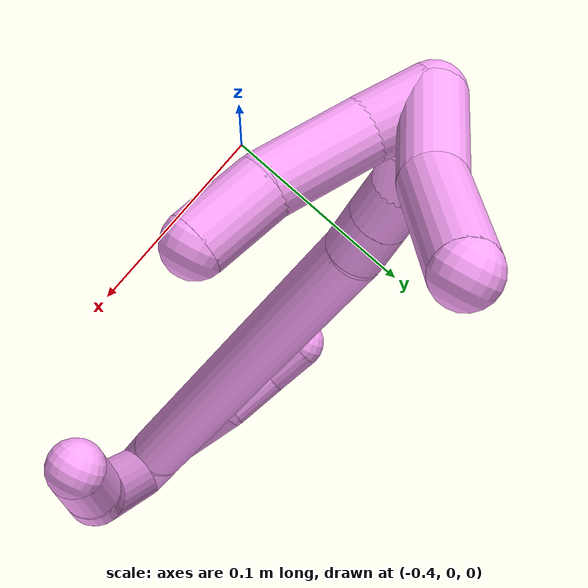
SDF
<sdf version="1.7">
 <world name="default">
  <model name="4">
   <static>0</static>
   <link name="4">
    <collision name="collision-cylinder-e_1_2_8">
     <pose>0.047343 -0.016657 0.004131 1.32771 1.22304 1.00344</pose>
     <geometry><cylinder><radius>0.0125</radius><length>0.100716</length></cylinder></geometry>
     <surface>
      <friction><ode><mu>1.16</mu><mu2>1.16</mu2><slip1>0</slip1><slip2>0</slip2></ode></friction>
      <contact><ode><kp>1e+06</kp><kd>1</kd><max_vel>0</max_vel><min_depth>0.001</min_depth></ode></contact>
     </surface>
    </collision>
    <visual name="visual-cylinder-e_1_2_8">
     <pose>0.047343 -0.016657 0.004131 1.32771 1.22304 1.00344</pose>
     <geometry><cylinder><radius>0.0125</radius><length>0.100716</length></cylinder></geometry>
     <material><ambient>1 0.65098 0.996078 1</ambient></material>
    </visual>
    <collision name="collision-cylinder-e_2_8_9">
     <pose>0.104913 -0.037019 0.012367 0.734259 1.07507 0.450679</pose>
     <geometry><cylinder><radius>0.0125</radius><length>0.023252</length></cylinder></geometry>
     <surface>
      <friction><ode><mu>1.16</mu><mu2>1.16</mu2><slip1>0</slip1><slip2>0</slip2></ode></friction>
      <contact><ode><kp>1e+06</kp><kd>1</kd><max_vel>0</max_vel><min_depth>0.001</min_depth></ode></contact>
     </surface>
    </collision>
    <visual name="visual-cylinder-e_2_8_9">
     <pose>0.104913 -0.037019 0.012367 0.734259 1.07507 0.450679</pose>
     <geometry><cylinder><radius>0.0125</radius><length>0.023252</length></cylinder></geometry>
     <material><ambient>1 0.65098 0.996078 1</ambient></material>
    </visual>
    <collision name="collision-cylinder-e_3_9_6">
     <pose>0.124984 -0.047352 0.021818 0.891994 0.857642 0.430424</pose>
     <geometry><cylinder><radius>0.0125</radius><length>0.026032</length></cylinder></geometry>
     <surface>
      <friction><ode><mu>1.16</mu><mu2>1.16</mu2><slip1>0</slip1><slip2>0</slip2></ode></friction>
      <contact><ode><kp>1e+06</kp><kd>1</kd><max_vel>0</max_vel><min_depth>0.001</min_depth></ode></contact>
     </surface>
    </collision>
    <visual name="visual-cylinder-e_3_9_6">
     <pose>0.124984 -0.047352 0.021818 0.891994 0.857642 0.430424</pose>
     <geometry><cylinder><radius>0.0125</radius><length>0.026032</length></cylinder></geometry>
     <material><ambient>1 0.65098 0.996078 1</ambient></material>
    </visual>
    <collision name="collision-cylinder-e_1_2_10">
     <pose>0.00143 0.00238 0.010351 -0.226018 0.133839 -0.015212</pose>
     <geometry><cylinder><radius>0.0125</radius><length>0.021434</length></cylinder></geometry>
     <surface>
      <friction><ode><mu>1.16</mu><mu2>1.16</mu2><slip1>0</slip1><slip2>0</slip2></ode></friction>
      <contact><ode><kp>1e+06</kp><kd>1</kd><max_vel>0</max_vel><min_depth>0.001</min_depth></ode></contact>
     </surface>
    </collision>
    <visual name="visual-cylinder-e_1_2_10">
     <pose>0.00143 0.00238 0.010351 -0.226018 0.133839 -0.015212</pose>
     <geometry><cylinder><radius>0.0125</radius><length>0.021434</length></cylinder></geometry>
     <material><ambient>1 0.65098 0.996078 1</ambient></material>
    </visual>
    <collision name="collision-cylinder-e_2_10_11">
     <pose>0.006246 0.011552 0.035509 -0.430064 0.204936 -0.04491</pose>
     <geometry><cylinder><radius>0.0125</radius><length>0.033277</length></cylinder></geometry>
     <surface>
      <friction><ode><mu>1.16</mu><mu2>1.16</mu2><slip1>0</slip1><slip2>0</slip2></ode></friction>
      <contact><ode><kp>1e+06</kp><kd>1</kd><max_vel>0</max_vel><min_depth>0.001</min_depth></ode></contact>
     </surface>
    </collision>
    <visual name="visual-cylinder-e_2_10_11">
     <pose>0.006246 0.011552 0.035509 -0.430064 0.204936 -0.04491</pose>
     <geometry><cylinder><radius>0.0125</radius><length>0.033277</length></cylinder></geometry>
     <material><ambient>1 0.65098 0.996078 1</ambient></material>
    </visual>
    <collision name="collision-cylinder-e_3_11_12">
     <pose>0.007967 0.023375 0.061387 -0.426477 -0.136121 0.029518</pose>
     <geometry><cylinder><radius>0.0125</radius><length>0.024548</length></cylinder></geometry>
     <surface>
      <friction><ode><mu>1.16</mu><mu2>1.16</mu2><slip1>0</slip1><slip2>0</slip2></ode></friction>
      <contact><ode><kp>1e+06</kp><kd>1</kd><max_vel>0</max_vel><min_depth>0.001</min_depth></ode></contact>
     </surface>
    </collision>
    <visual name="visual-cylinder-e_3_11_12">
     <pose>0.007967 0.023375 0.061387 -0.426477 -0.136121 0.029518</pose>
     <geometry><cylinder><radius>0.0125</radius><length>0.024548</length></cylinder></geometry>
     <material><ambient>1 0.65098 0.996078 1</ambient></material>
    </visual>
    <collision name="collision-cylinder-e_4_12_5">
     <pose>0.007634 0.031954 0.082111 -0.352315 0.128859 -0.022968</pose>
     <geometry><cylinder><radius>0.0125</radius><length>0.020741</length></cylinder></geometry>
     <surface>
      <friction><ode><mu>1.16</mu><mu2>1.16</mu2><slip1>0</slip1><slip2>0</slip2></ode></friction>
      <contact><ode><kp>1e+06</kp><kd>1</kd><max_vel>0</max_vel><min_depth>0.001</min_depth></ode></contact>
     </surface>
    </collision>
    <visual name="visual-cylinder-e_4_12_5">
     <pose>0.007634 0.031954 0.082111 -0.352315 0.128859 -0.022968</pose>
     <geometry><cylinder><radius>0.0125</radius><length>0.020741</length></cylinder></geometry>
     <material><ambient>1 0.65098 0.996078 1</ambient></material>
    </visual>
    <collision name="collision-cylinder-e_1_2_13">
     <pose>0.013659 -0.001333 0.010435 0.127058 0.914513 0.062581</pose>
     <geometry><cylinder><radius>0.0125</radius><length>0.03448</length></cylinder></geometry>
     <surface>
      <friction><ode><mu>1.16</mu><mu2>1.16</mu2><slip1>0</slip1><slip2>0</slip2></ode></friction>
      <contact><ode><kp>1e+06</kp><kd>1</kd><max_vel>0</max_vel><min_depth>0.001</min_depth></ode></contact>
     </surface>
    </collision>
    <visual name="visual-cylinder-e_1_2_13">
     <pose>0.013659 -0.001333 0.010435 0.127058 0.914513 0.062581</pose>
     <geometry><cylinder><radius>0.0125</radius><length>0.03448</length></cylinder></geometry>
     <material><ambient>1 0.65098 0.996078 1</ambient></material>
    </visual>
    <collision name="collision-cylinder-e_2_13_14">
     <pose>0.090405 -0.002249 0.088093 -0.006199 0.753664 -0.002453</pose>
     <geometry><cylinder><radius>0.0125</radius><length>0.184384</length></cylinder></geometry>
     <surface>
      <friction><ode><mu>1.16</mu><mu2>1.16</mu2><slip1>0</slip1><slip2>0</slip2></ode></friction>
      <contact><ode><kp>1e+06</kp><kd>1</kd><max_vel>0</max_vel><min_depth>0.001</min_depth></ode></contact>
     </surface>
    </collision>
    <visual name="visual-cylinder-e_2_13_14">
     <pose>0.090405 -0.002249 0.088093 -0.006199 0.753664 -0.002453</pose>
     <geometry><cylinder><radius>0.0125</radius><length>0.184384</length></cylinder></geometry>
     <material><ambient>1 0.65098 0.996078 1</ambient></material>
    </visual>
    <collision name="collision-cylinder-e_3_14_15">
     <pose>0.159379 -0.002376 0.163553 0.065858 0.619412 0.021081</pose>
     <geometry><cylinder><radius>0.0125</radius><length>0.020274</length></cylinder></geometry>
     <surface>
      <friction><ode><mu>1.16</mu><mu2>1.16</mu2><slip1>0</slip1><slip2>0</slip2></ode></friction>
      <contact><ode><kp>1e+06</kp><kd>1</kd><max_vel>0</max_vel><min_depth>0.001</min_depth></ode></contact>
     </surface>
    </collision>
    <visual name="visual-cylinder-e_3_14_15">
     <pose>0.159379 -0.002376 0.163553 0.065858 0.619412 0.021081</pose>
     <geometry><cylinder><radius>0.0125</radius><length>0.020274</length></cylinder></geometry>
     <material><ambient>1 0.65098 0.996078 1</ambient></material>
    </visual>
    <collision name="collision-cylinder-e_4_15_16">
     <pose>0.171453 -0.00347 0.179722 0.069301 0.661342 0.023798</pose>
     <geometry><cylinder><radius>0.0125</radius><length>0.020154</length></cylinder></geometry>
     <surface>
      <friction><ode><mu>1.16</mu><mu2>1.16</mu2><slip1>0</slip1><slip2>0</slip2></ode></friction>
      <contact><ode><kp>1e+06</kp><kd>1</kd><max_vel>0</max_vel><min_depth>0.001</min_depth></ode></contact>
     </surface>
    </collision>
    <visual name="visual-cylinder-e_4_15_16">
     <pose>0.171453 -0.00347 0.179722 0.069301 0.661342 0.023798</pose>
     <geometry><cylinder><radius>0.0125</radius><length>0.020154</length></cylinder></geometry>
     <material><ambient>1 0.65098 0.996078 1</ambient></material>
    </visual>
    <collision name="collision-cylinder-e_5_16_17">
     <pose>0.183376 -0.00787 0.195057 0.479647 0.602076 0.15155</pose>
     <geometry><cylinder><radius>0.0125</radius><length>0.020247</length></cylinder></geometry>
     <surface>
      <friction><ode><mu>1.16</mu><mu2>1.16</mu2><slip1>0</slip1><slip2>0</slip2></ode></friction>
      <contact><ode><kp>1e+06</kp><kd>1</kd><max_vel>0</max_vel><min_depth>0.001</min_depth></ode></contact>
     </surface>
    </collision>
    <visual name="visual-cylinder-e_5_16_17">
     <pose>0.183376 -0.00787 0.195057 0.479647 0.602076 0.15155</pose>
     <geometry><cylinder><radius>0.0125</radius><length>0.020247</length></cylinder></geometry>
     <material><ambient>1 0.65098 0.996078 1</ambient></material>
    </visual>
    <collision name="collision-cylinder-e_6_17_1">
     <pose>0.193691 -0.014075 0.211298 0.260313 0.464343 0.061877</pose>
     <geometry><cylinder><radius>0.0125</radius><length>0.020461</length></cylinder></geometry>
     <surface>
      <friction><ode><mu>1.16</mu><mu2>1.16</mu2><slip1>0</slip1><slip2>0</slip2></ode></friction>
      <contact><ode><kp>1e+06</kp><kd>1</kd><max_vel>0</max_vel><min_depth>0.001</min_depth></ode></contact>
     </surface>
    </collision>
    <visual name="visual-cylinder-e_6_17_1">
     <pose>0.193691 -0.014075 0.211298 0.260313 0.464343 0.061877</pose>
     <geometry><cylinder><radius>0.0125</radius><length>0.020461</length></cylinder></geometry>
     <material><ambient>1 0.65098 0.996078 1</ambient></material>
    </visual>
    <collision name="collision-cylinder-e_1_1_18">
     <pose>0.199636 -0.024436 0.209405 2.50063 0.101467 0.3036</pose>
     <geometry><cylinder><radius>0.0125</radius><length>0.026919</length></cylinder></geometry>
     <surface>
      <friction><ode><mu>1.16</mu><mu2>1.16</mu2><slip1>0</slip1><slip2>0</slip2></ode></friction>
      <contact><ode><kp>1e+06</kp><kd>1</kd><max_vel>0</max_vel><min_depth>0.001</min_depth></ode></contact>
     </surface>
    </collision>
    <visual name="visual-cylinder-e_1_1_18">
     <pose>0.199636 -0.024436 0.209405 2.50063 0.101467 0.3036</pose>
     <geometry><cylinder><radius>0.0125</radius><length>0.026919</length></cylinder></geometry>
     <material><ambient>1 0.65098 0.996078 1</ambient></material>
    </visual>
    <collision name="collision-cylinder-e_2_18_19">
     <pose>0.206594 -0.04464 0.182691 2.48973 0.271434 0.767958</pose>
     <geometry><cylinder><radius>0.0125</radius><length>0.041735</length></cylinder></geometry>
     <surface>
      <friction><ode><mu>1.16</mu><mu2>1.16</mu2><slip1>0</slip1><slip2>0</slip2></ode></friction>
      <contact><ode><kp>1e+06</kp><kd>1</kd><max_vel>0</max_vel><min_depth>0.001</min_depth></ode></contact>
     </surface>
    </collision>
    <visual name="visual-cylinder-e_2_18_19">
     <pose>0.206594 -0.04464 0.182691 2.48973 0.271434 0.767958</pose>
     <geometry><cylinder><radius>0.0125</radius><length>0.041735</length></cylinder></geometry>
     <material><ambient>1 0.65098 0.996078 1</ambient></material>
    </visual>
    <collision name="collision-cylinder-e_3_19_4">
     <pose>0.216195 -0.063462 0.153083 2.68899 0.258485 1.02778</pose>
     <geometry><cylinder><radius>0.0125</radius><length>0.031345</length></cylinder></geometry>
     <surface>
      <friction><ode><mu>1.16</mu><mu2>1.16</mu2><slip1>0</slip1><slip2>0</slip2></ode></friction>
      <contact><ode><kp>1e+06</kp><kd>1</kd><max_vel>0</max_vel><min_depth>0.001</min_depth></ode></contact>
     </surface>
    </collision>
    <visual name="visual-cylinder-e_3_19_4">
     <pose>0.216195 -0.063462 0.153083 2.68899 0.258485 1.02778</pose>
     <geometry><cylinder><radius>0.0125</radius><length>0.031345</length></cylinder></geometry>
     <material><ambient>1 0.65098 0.996078 1</ambient></material>
    </visual>
    <collision name="collision-cylinder-e_1_1_20">
     <pose>0.215443 -0.014041 0.207528 -2.95444 0.928957 -2.77126</pose>
     <geometry><cylinder><radius>0.0125</radius><length>0.042874</length></cylinder></geometry>
     <surface>
      <friction><ode><mu>1.16</mu><mu2>1.16</mu2><slip1>0</slip1><slip2>0</slip2></ode></friction>
      <contact><ode><kp>1e+06</kp><kd>1</kd><max_vel>0</max_vel><min_depth>0.001</min_depth></ode></contact>
     </surface>
    </collision>
    <visual name="visual-cylinder-e_1_1_20">
     <pose>0.215443 -0.014041 0.207528 -2.95444 0.928957 -2.77126</pose>
     <geometry><cylinder><radius>0.0125</radius><length>0.042874</length></cylinder></geometry>
     <material><ambient>1 0.65098 0.996078 1</ambient></material>
    </visual>
    <collision name="collision-cylinder-e_2_20_3">
     <pose>0.259614 -0.008479 0.186156 -2.79399 1.23843 -2.65853</pose>
     <geometry><cylinder><radius>0.0125</radius><length>0.057126</length></cylinder></geometry>
     <surface>
      <friction><ode><mu>1.16</mu><mu2>1.16</mu2><slip1>0</slip1><slip2>0</slip2></ode></friction>
      <contact><ode><kp>1e+06</kp><kd>1</kd><max_vel>0</max_vel><min_depth>0.001</min_depth></ode></contact>
     </surface>
    </collision>
    <visual name="visual-cylinder-e_2_20_3">
     <pose>0.259614 -0.008479 0.186156 -2.79399 1.23843 -2.65853</pose>
     <geometry><cylinder><radius>0.0125</radius><length>0.057126</length></cylinder></geometry>
     <material><ambient>1 0.65098 0.996078 1</ambient></material>
    </visual>
    <collision name="collision-sphere-3">
     <pose>0.286614 -0.005304 0.177394 0 -0 0</pose>
     <geometry><sphere><radius>0.0125</radius></sphere></geometry>
     <surface>
      <friction><ode><mu>1.16</mu><mu2>1.16</mu2><slip1>0</slip1><slip2>0</slip2></ode></friction>
      <contact><ode><kp>1e+06</kp><kd>1</kd><max_vel>0</max_vel><min_depth>0.001</min_depth></ode></contact>
     </surface>
    </collision>
    <visual name="visual-sphere-3">
     <pose>0.286614 -0.005304 0.177394 0 -0 0</pose>
     <geometry><sphere><radius>0.0125</radius></sphere></geometry>
     <material><ambient>1 0.65098 0.996078 1</ambient></material>
    </visual>
    <collision name="collision-sphere-20">
     <pose>0.232615 -0.011654 0.194918 0 -0 0</pose>
     <geometry><sphere><radius>0.0125</radius></sphere></geometry>
     <surface>
      <friction><ode><mu>1.16</mu><mu2>1.16</mu2><slip1>0</slip1><slip2>0</slip2></ode></friction>
      <contact><ode><kp>1e+06</kp><kd>1</kd><max_vel>0</max_vel><min_depth>0.001</min_depth></ode></contact>
     </surface>
    </collision>
    <visual name="visual-sphere-20">
     <pose>0.232615 -0.011654 0.194918 0 -0 0</pose>
     <geometry><sphere><radius>0.0125</radius></sphere></geometry>
     <material><ambient>1 0.65098 0.996078 1</ambient></material>
    </visual>
    <collision name="collision-sphere-4">
     <pose>0.220201 -0.070088 0.139456 0 -0 0</pose>
     <geometry><sphere><radius>0.0125</radius></sphere></geometry>
     <surface>
      <friction><ode><mu>1.16</mu><mu2>1.16</mu2><slip1>0</slip1><slip2>0</slip2></ode></friction>
      <contact><ode><kp>1e+06</kp><kd>1</kd><max_vel>0</max_vel><min_depth>0.001</min_depth></ode></contact>
     </surface>
    </collision>
    <visual name="visual-sphere-4">
     <pose>0.220201 -0.070088 0.139456 0 -0 0</pose>
     <geometry><sphere><radius>0.0125</radius></sphere></geometry>
     <material><ambient>1 0.65098 0.996078 1</ambient></material>
    </visual>
    <collision name="collision-sphere-11">
     <pose>0.009632 0.018344 0.050316 0 -0 0</pose>
     <geometry><sphere><radius>0.0125</radius></sphere></geometry>
     <surface>
      <friction><ode><mu>1.16</mu><mu2>1.16</mu2><slip1>0</slip1><slip2>0</slip2></ode></friction>
      <contact><ode><kp>1e+06</kp><kd>1</kd><max_vel>0</max_vel><min_depth>0.001</min_depth></ode></contact>
     </surface>
    </collision>
    <visual name="visual-sphere-11">
     <pose>0.009632 0.018344 0.050316 0 -0 0</pose>
     <geometry><sphere><radius>0.0125</radius></sphere></geometry>
     <material><ambient>1 0.65098 0.996078 1</ambient></material>
    </visual>
    <collision name="collision-sphere-10">
     <pose>0.00286 0.00476 0.020702 0 -0 0</pose>
     <geometry><sphere><radius>0.0125</radius></sphere></geometry>
     <surface>
      <friction><ode><mu>1.16</mu><mu2>1.16</mu2><slip1>0</slip1><slip2>0</slip2></ode></friction>
      <contact><ode><kp>1e+06</kp><kd>1</kd><max_vel>0</max_vel><min_depth>0.001</min_depth></ode></contact>
     </surface>
    </collision>
    <visual name="visual-sphere-10">
     <pose>0.00286 0.00476 0.020702 0 -0 0</pose>
     <geometry><sphere><radius>0.0125</radius></sphere></geometry>
     <material><ambient>1 0.65098 0.996078 1</ambient></material>
    </visual>
    <collision name="collision-sphere-6">
     <pose>0.134828 -0.05398 0.027165 0 -0 0</pose>
     <geometry><sphere><radius>0.0125</radius></sphere></geometry>
     <surface>
      <friction><ode><mu>1.16</mu><mu2>1.16</mu2><slip1>0</slip1><slip2>0</slip2></ode></friction>
      <contact><ode><kp>1e+06</kp><kd>1</kd><max_vel>0</max_vel><min_depth>0.001</min_depth></ode></contact>
     </surface>
    </collision>
    <visual name="visual-sphere-6">
     <pose>0.134828 -0.05398 0.027165 0 -0 0</pose>
     <geometry><sphere><radius>0.0125</radius></sphere></geometry>
     <material><ambient>1 0.65098 0.996078 1</ambient></material>
    </visual>
    <collision name="collision-sphere-9">
     <pose>0.11514 -0.040724 0.016472 0 -0 0</pose>
     <geometry><sphere><radius>0.0125</radius></sphere></geometry>
     <surface>
      <friction><ode><mu>1.16</mu><mu2>1.16</mu2><slip1>0</slip1><slip2>0</slip2></ode></friction>
      <contact><ode><kp>1e+06</kp><kd>1</kd><max_vel>0</max_vel><min_depth>0.001</min_depth></ode></contact>
     </surface>
    </collision>
    <visual name="visual-sphere-9">
     <pose>0.11514 -0.040724 0.016472 0 -0 0</pose>
     <geometry><sphere><radius>0.0125</radius></sphere></geometry>
     <material><ambient>1 0.65098 0.996078 1</ambient></material>
    </visual>
    <collision name="collision-sphere-2">
     <geometry><sphere><radius>0.0125</radius></sphere></geometry>
     <surface>
      <friction><ode><mu>1.16</mu><mu2>1.16</mu2><slip1>0</slip1><slip2>0</slip2></ode></friction>
      <contact><ode><kp>1e+06</kp><kd>1</kd><max_vel>0</max_vel><min_depth>0.001</min_depth></ode></contact>
     </surface>
    </collision>
    <visual name="visual-sphere-2">
     <geometry><sphere><radius>0.0125</radius></sphere></geometry>
     <material><ambient>1 0.65098 0.996078 1</ambient></material>
    </visual>
    <collision name="collision-sphere-19">
     <pose>0.212189 -0.056836 0.166709 0 -0 0</pose>
     <geometry><sphere><radius>0.0125</radius></sphere></geometry>
     <surface>
      <friction><ode><mu>1.16</mu><mu2>1.16</mu2><slip1>0</slip1><slip2>0</slip2></ode></friction>
      <contact><ode><kp>1e+06</kp><kd>1</kd><max_vel>0</max_vel><min_depth>0.001</min_depth></ode></contact>
     </surface>
    </collision>
    <visual name="visual-sphere-19">
     <pose>0.212189 -0.056836 0.166709 0 -0 0</pose>
     <geometry><sphere><radius>0.0125</radius></sphere></geometry>
     <material><ambient>1 0.65098 0.996078 1</ambient></material>
    </visual>
    <collision name="collision-sphere-8">
     <pose>0.094687 -0.033313 0.008261 0 -0 0</pose>
     <geometry><sphere><radius>0.0125</radius></sphere></geometry>
     <surface>
      <friction><ode><mu>1.16</mu><mu2>1.16</mu2><slip1>0</slip1><slip2>0</slip2></ode></friction>
      <contact><ode><kp>1e+06</kp><kd>1</kd><max_vel>0</max_vel><min_depth>0.001</min_depth></ode></contact>
     </surface>
    </collision>
    <visual name="visual-sphere-8">
     <pose>0.094687 -0.033313 0.008261 0 -0 0</pose>
     <geometry><sphere><radius>0.0125</radius></sphere></geometry>
     <material><ambient>1 0.65098 0.996078 1</ambient></material>
    </visual>
    <collision name="collision-sphere-12">
     <pose>0.006301 0.028405 0.072458 0 -0 0</pose>
     <geometry><sphere><radius>0.0125</radius></sphere></geometry>
     <surface>
      <friction><ode><mu>1.16</mu><mu2>1.16</mu2><slip1>0</slip1><slip2>0</slip2></ode></friction>
      <contact><ode><kp>1e+06</kp><kd>1</kd><max_vel>0</max_vel><min_depth>0.001</min_depth></ode></contact>
     </surface>
    </collision>
    <visual name="visual-sphere-12">
     <pose>0.006301 0.028405 0.072458 0 -0 0</pose>
     <geometry><sphere><radius>0.0125</radius></sphere></geometry>
     <material><ambient>1 0.65098 0.996078 1</ambient></material>
    </visual>
    <collision name="collision-sphere-5">
     <pose>0.008966 0.035503 0.091764 0 -0 0</pose>
     <geometry><sphere><radius>0.0125</radius></sphere></geometry>
     <surface>
      <friction><ode><mu>1.16</mu><mu2>1.16</mu2><slip1>0</slip1><slip2>0</slip2></ode></friction>
      <contact><ode><kp>1e+06</kp><kd>1</kd><max_vel>0</max_vel><min_depth>0.001</min_depth></ode></contact>
     </surface>
    </collision>
    <visual name="visual-sphere-5">
     <pose>0.008966 0.035503 0.091764 0 -0 0</pose>
     <geometry><sphere><radius>0.0125</radius></sphere></geometry>
     <material><ambient>1 0.65098 0.996078 1</ambient></material>
    </visual>
    <collision name="collision-sphere-13">
     <pose>0.027317 -0.002666 0.020869 0 -0 0</pose>
     <geometry><sphere><radius>0.0125</radius></sphere></geometry>
     <surface>
      <friction><ode><mu>1.16</mu><mu2>1.16</mu2><slip1>0</slip1><slip2>0</slip2></ode></friction>
      <contact><ode><kp>1e+06</kp><kd>1</kd><max_vel>0</max_vel><min_depth>0.001</min_depth></ode></contact>
     </surface>
    </collision>
    <visual name="visual-sphere-13">
     <pose>0.027317 -0.002666 0.020869 0 -0 0</pose>
     <geometry><sphere><radius>0.0125</radius></sphere></geometry>
     <material><ambient>1 0.65098 0.996078 1</ambient></material>
    </visual>
    <collision name="collision-sphere-14">
     <pose>0.153494 -0.001833 0.155317 0 -0 0</pose>
     <geometry><sphere><radius>0.0125</radius></sphere></geometry>
     <surface>
      <friction><ode><mu>1.16</mu><mu2>1.16</mu2><slip1>0</slip1><slip2>0</slip2></ode></friction>
      <contact><ode><kp>1e+06</kp><kd>1</kd><max_vel>0</max_vel><min_depth>0.001</min_depth></ode></contact>
     </surface>
    </collision>
    <visual name="visual-sphere-14">
     <pose>0.153494 -0.001833 0.155317 0 -0 0</pose>
     <geometry><sphere><radius>0.0125</radius></sphere></geometry>
     <material><ambient>1 0.65098 0.996078 1</ambient></material>
    </visual>
    <collision name="collision-sphere-15">
     <pose>0.165264 -0.002919 0.171789 0 -0 0</pose>
     <geometry><sphere><radius>0.0125</radius></sphere></geometry>
     <surface>
      <friction><ode><mu>1.16</mu><mu2>1.16</mu2><slip1>0</slip1><slip2>0</slip2></ode></friction>
      <contact><ode><kp>1e+06</kp><kd>1</kd><max_vel>0</max_vel><min_depth>0.001</min_depth></ode></contact>
     </surface>
    </collision>
    <visual name="visual-sphere-15">
     <pose>0.165264 -0.002919 0.171789 0 -0 0</pose>
     <geometry><sphere><radius>0.0125</radius></sphere></geometry>
     <material><ambient>1 0.65098 0.996078 1</ambient></material>
    </visual>
    <collision name="collision-sphere-16">
     <pose>0.177642 -0.00402 0.187655 0 -0 0</pose>
     <geometry><sphere><radius>0.0125</radius></sphere></geometry>
     <surface>
      <friction><ode><mu>1.16</mu><mu2>1.16</mu2><slip1>0</slip1><slip2>0</slip2></ode></friction>
      <contact><ode><kp>1e+06</kp><kd>1</kd><max_vel>0</max_vel><min_depth>0.001</min_depth></ode></contact>
     </surface>
    </collision>
    <visual name="visual-sphere-16">
     <pose>0.177642 -0.00402 0.187655 0 -0 0</pose>
     <geometry><sphere><radius>0.0125</radius></sphere></geometry>
     <material><ambient>1 0.65098 0.996078 1</ambient></material>
    </visual>
    <collision name="collision-sphere-17">
     <pose>0.189109 -0.011721 0.202459 0 -0 0</pose>
     <geometry><sphere><radius>0.0125</radius></sphere></geometry>
     <surface>
      <friction><ode><mu>1.16</mu><mu2>1.16</mu2><slip1>0</slip1><slip2>0</slip2></ode></friction>
      <contact><ode><kp>1e+06</kp><kd>1</kd><max_vel>0</max_vel><min_depth>0.001</min_depth></ode></contact>
     </surface>
    </collision>
    <visual name="visual-sphere-17">
     <pose>0.189109 -0.011721 0.202459 0 -0 0</pose>
     <geometry><sphere><radius>0.0125</radius></sphere></geometry>
     <material><ambient>1 0.65098 0.996078 1</ambient></material>
    </visual>
    <collision name="collision-sphere-1">
     <pose>0.198272 -0.016429 0.220138 0 -0 0</pose>
     <geometry><sphere><radius>0.0125</radius></sphere></geometry>
     <surface>
      <friction><ode><mu>1.16</mu><mu2>1.16</mu2><slip1>0</slip1><slip2>0</slip2></ode></friction>
      <contact><ode><kp>1e+06</kp><kd>1</kd><max_vel>0</max_vel><min_depth>0.001</min_depth></ode></contact>
     </surface>
    </collision>
    <visual name="visual-sphere-1">
     <pose>0.198272 -0.016429 0.220138 0 -0 0</pose>
     <geometry><sphere><radius>0.0125</radius></sphere></geometry>
     <material><ambient>1 0.65098 0.996078 1</ambient></material>
    </visual>
    <collision name="collision-sphere-18">
     <pose>0.200999 -0.032444 0.198672 0 -0 0</pose>
     <geometry><sphere><radius>0.0125</radius></sphere></geometry>
     <surface>
      <friction><ode><mu>1.16</mu><mu2>1.16</mu2><slip1>0</slip1><slip2>0</slip2></ode></friction>
      <contact><ode><kp>1e+06</kp><kd>1</kd><max_vel>0</max_vel><min_depth>0.001</min_depth></ode></contact>
     </surface>
    </collision>
    <visual name="visual-sphere-18">
     <pose>0.200999 -0.032444 0.198672 0 -0 0</pose>
     <geometry><sphere><radius>0.0125</radius></sphere></geometry>
     <material><ambient>1 0.65098 0.996078 1</ambient></material>
    </visual>
    <inertial>
     <pose>0.11653 -0.011629 0.100387 0 -0 0</pose>
     <mass>0.75</mass>
     <inertia>
      <ixx>0.000488</ixx>
      <ixy>0</ixy>
      <ixz>0</ixz>
      <iyy>0.000676</iyy>
      <iyz>0</iyz>
      <izz>-0.000436</izz>
     </inertia>
    </inertial>
   </link>
   <pose>-0.247014 0.069068 0.013082 -0.905867 -1.22082 1.15254</pose>
  </model>
 </world>
</sdf>
